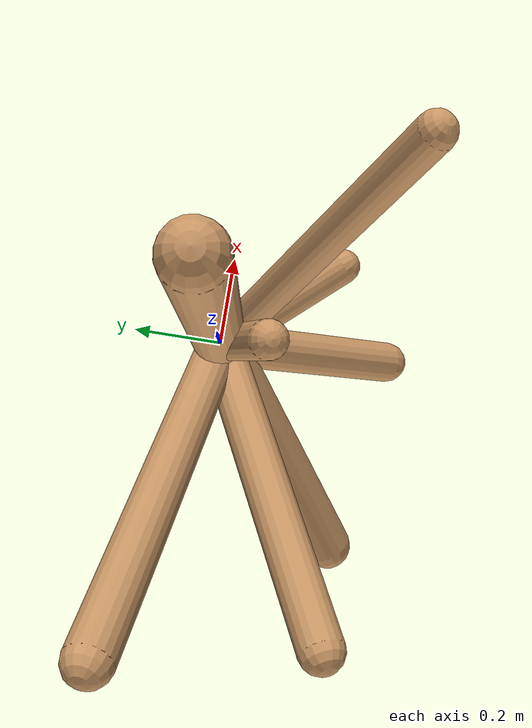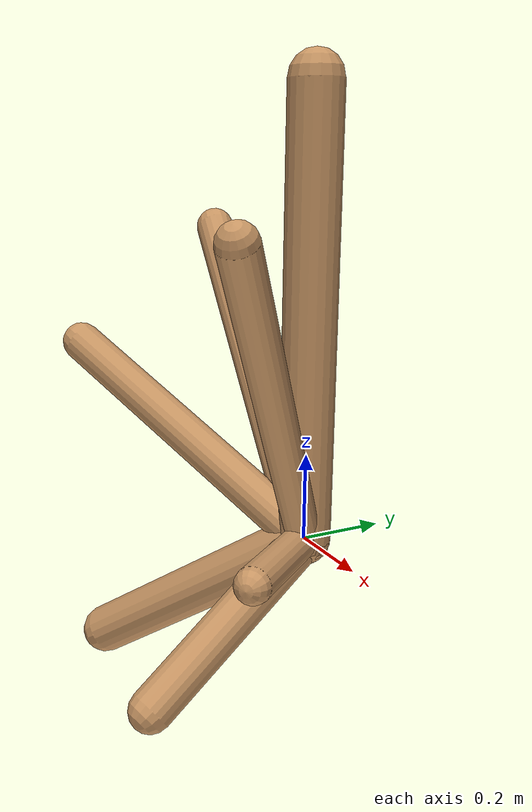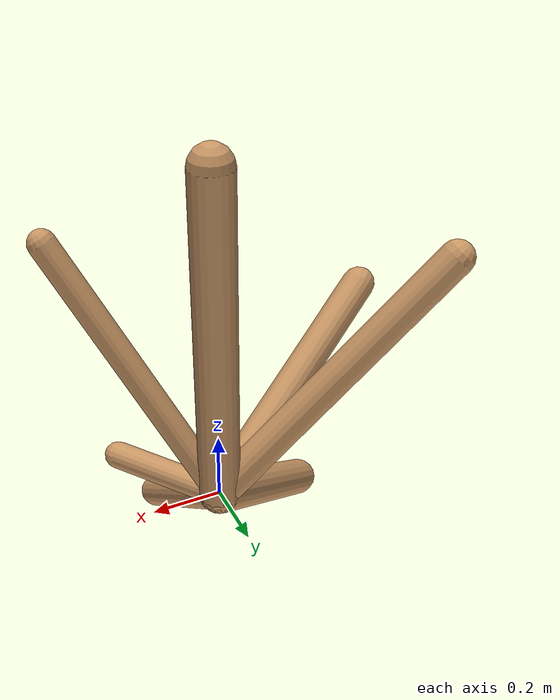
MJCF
<!--
                    joint_number: 7
                    -->
                    <mujoco model="randomrobot">
                        <compiler angle="degree" coordinate="global" inertiafromgeom="true"/>
                        <default>
                        <joint armature="0.01" damping=".1" limited="true"/>
                        <geom conaffinity="0" condim="3" contype="1" density="1000" friction="0.8 .1 .1" rgba="0.8 0.6 .4 1"/>
                        </default>
                        <option integrator="RK4" timestep="0.002"/>
                        <worldbody>
                    <body name='torso' pos='0.00 0.00 0.60'><geom fromto='0 0 0 0.00 0.00 1.00' name='torso_geom' size='0.06' type='capsule'/><inertial mass='0.3'/><body name='L0_D1' pos='0.00 0.00 0.31'><joint axis='0 1 0' name='L0_D1_joint' pos='0 0 0' range='89.31 133.04' type='hinge'/><geom fromto='0 0 0 -0.61 -0.32 0.38' name='L0_D1_geom' size='0.05' type='capsule'/><inertial mass='0.3'/></body><body name='L1_D1' pos='0.00 0.00 0.39'><joint axis='0 1 0' name='L1_D1_joint' pos='0 0 0' range='102.27 164.38' type='hinge'/><geom fromto='0 0 0 0.06 -0.41 -0.30' name='L1_D1_geom' size='0.05' type='capsule'/><inertial mass='0.3'/></body><body name='L2_D1' pos='0.00 0.00 0.72'><joint axis='1 0 0' name='L2_D1_joint' pos='0 0 0' range='29.81 153.63' type='hinge'/><geom fromto='0 0 0 -0.66 0.09 0.66' name='L2_D1_geom' size='0.05' type='capsule'/><inertial mass='0.3'/><body name='L3_D0' pos='-0.49 0.07 0.50'><joint axis='1 0 0' name='L3_D0_joint' pos='0 0 0' range='22.76 49.86' type='hinge'/><geom fromto='0 0 0 -0.43 -0.34 -0.36' name='L3_D0_geom' size='0.06' type='capsule'/><inertial mass='0.3'/></body><body name='L4_D0' pos='-0.51 0.07 0.52'><joint axis='1 0 0' name='L4_D0_joint' pos='0 0 0' range='73.76 170.26' type='hinge'/><geom fromto='0 0 0 -0.04 -0.12 0.51' name='L4_D0_geom' size='0.04' type='capsule'/><inertial mass='0.3'/></body></body><body name='L5_D1' pos='0.00 0.00 0.33'><joint axis='0 0 1' name='L5_D1_joint' pos='0 0 0' range='105.36 137.02' type='hinge'/><geom fromto='0 0 0 0.22 -0.25 0.03' name='L5_D1_geom' size='0.04' type='capsule'/><inertial mass='0.3'/><body name='L6_D0' pos='0.15 -0.17 0.02'><joint axis='1 0 0' name='L6_D0_joint' pos='0 0 0' range='103.24 111.76' type='hinge'/><geom fromto='0 0 0 0.34 -0.35 0.71' name='L6_D0_geom' size='0.04' type='capsule'/><inertial mass='0.3'/></body></body></body>
                        </worldbody>
                    </mujoco>
